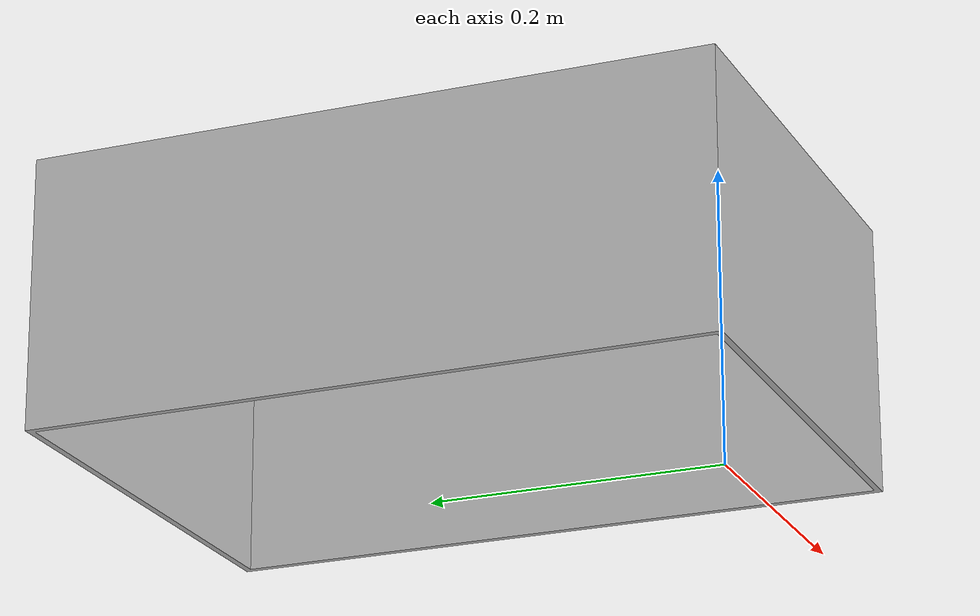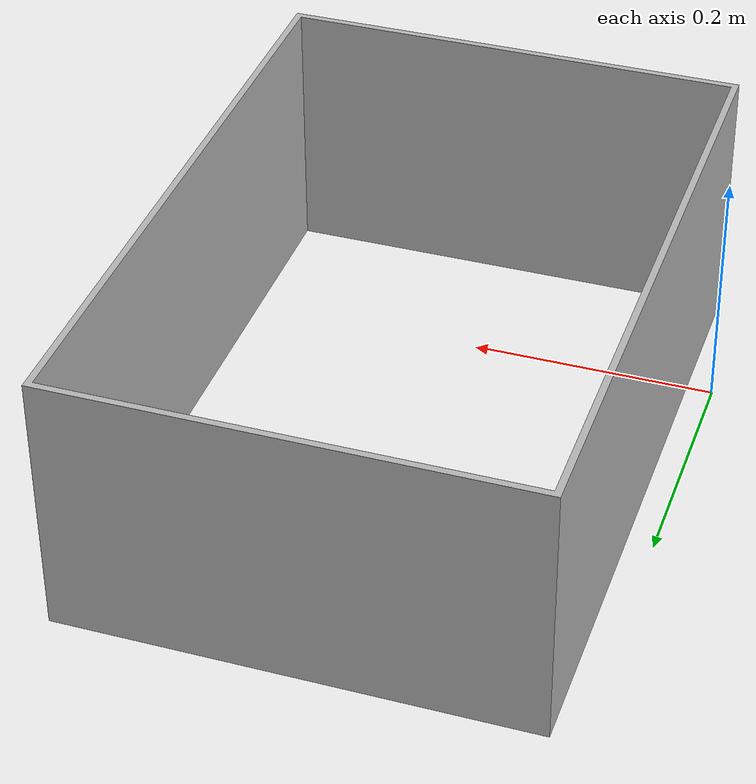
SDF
<?xml version="1.0" ?>
<sdf version="1.5">
  <model name="empty_gallery_walls">
    <pose>0 0 0.09  0 0 0</pose>
    <static>true</static>
    <link name="link">
      <inertial>
        <mass>50.0</mass>
        <inertia>
          <ixx>0.0215291666666667</ixx>
          <ixy>0</ixy>
          <ixz>0</ixz>
          <iyy>0.0215291666666667</iyy>
          <iyz>0</iyz>
          <izz>0.0215291666666667</izz>
        </inertia>
      </inertial>

      <collision name="collision">
        <geometry>
          <mesh>
            <uri>model://empty_gallery_walls/Mesh/empty_gallery_walls.stl</uri>
          </mesh>
        </geometry>
        <surface>
          <contact>
            <ode>
              <max_vel>0.1</max_vel>
              <min_depth>0.001</min_depth>
            </ode>
          </contact>
        </surface>
      </collision>

      <visual name="visual">
        <geometry>
          <mesh>
            <uri>model://empty_gallery_walls/Mesh/empty_gallery_walls.dae</uri>
          </mesh>
        </geometry>
      </visual>

    </link>
  </model>
</sdf>
